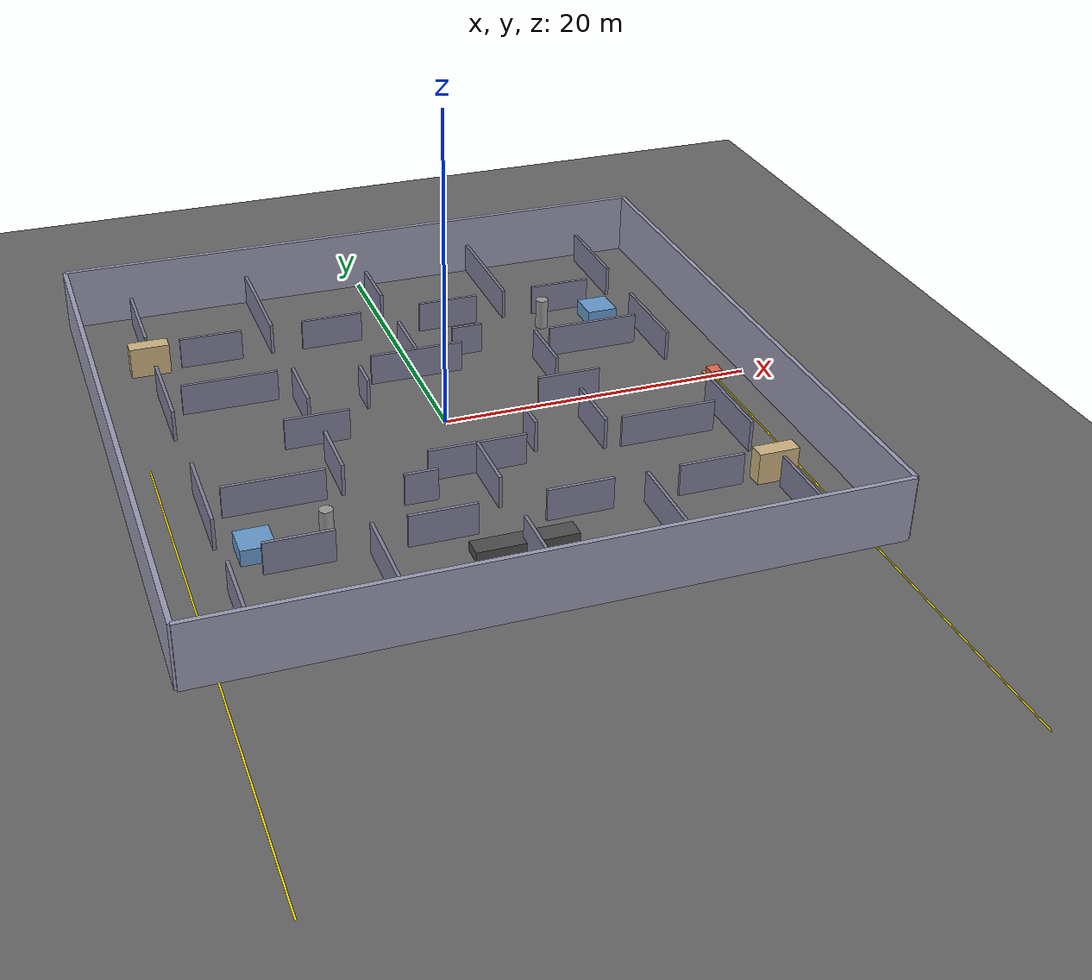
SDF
<?xml version="1.0" ?>
<sdf version="1.9">
  <world name="factory_world">

    <!-- Physics and Systems -->
    <plugin filename="gz-sim-physics-system" name="gz::sim::systems::Physics">
      <real_time_factor>1.0</real_time_factor>
      <real_time_update_rate>1000</real_time_update_rate>
    </plugin>
    <plugin filename="gz-sim-user-commands-system" name="gz::sim::systems::UserCommands"/>
    <plugin filename="gz-sim-scene-broadcaster-system" name="gz::sim::systems::SceneBroadcaster"/>
    <plugin filename="gz-sim-sensors-system" name="gz::sim::systems::Sensors"/>
    <plugin filename="gz-sim-contact-system" name="gz::sim::systems::Contact"/>

    <!-- Lighting -->
    <light type="directional" name="sun">
      <cast_shadows>true</cast_shadows>
      <pose>0 0 10 0 0 0</pose>
      <diffuse>0.9 0.9 0.9 1</diffuse>
      <specular>0.3 0.3 0.3 1</specular>
      <direction>-0.5 0.1 -0.9</direction>
    </light>

    <light type="point" name="ceiling_light_1">
      <pose>-5 5 5 0 0 0</pose>
      <diffuse>1 1 1 1</diffuse>
      <specular>0.5 0.5 0.5 1</specular>
      <attenuation>
        <range>15</range>
        <linear>0.1</linear>
        <constant>0.5</constant>
        <quadratic>0.01</quadratic>
      </attenuation>
    </light>

    <light type="point" name="ceiling_light_2">
      <pose>5 -5 5 0 0 0</pose>
      <diffuse>1 1 1 1</diffuse>
      <specular>0.5 0.5 0.5 1</specular>
      <attenuation>
        <range>15</range>
        <linear>0.1</linear>
        <constant>0.5</constant>
        <quadratic>0.01</quadratic>
      </attenuation>
    </light>

    <light type="point" name="ceiling_light_3">
      <pose>-5 -5 5 0 0 0</pose>
      <diffuse>1 1 1 1</diffuse>
      <specular>0.5 0.5 0.5 1</specular>
      <attenuation>
        <range>15</range>
        <linear>0.1</linear>
        <constant>0.5</constant>
        <quadratic>0.01</quadratic>
      </attenuation>
    </light>

    <light type="point" name="ceiling_light_4">
      <pose>5 5 5 0 0 0</pose>
      <diffuse>1 1 1 1</diffuse>
      <specular>0.5 0.5 0.5 1</specular>
      <attenuation>
        <range>15</range>
        <linear>0.1</linear>
        <constant>0.5</constant>
        <quadratic>0.01</quadratic>
      </attenuation>
    </light>

    <!-- Ground Plane -->
    <model name="ground_plane">
      <static>true</static>
      <link name="link">
        <collision name="collision">
          <geometry>
            <plane>
              <normal>0 0 1</normal>
              <size>50 50</size>
            </plane>
          </geometry>
        </collision>
        <visual name="visual">
          <geometry>
            <plane>
              <normal>0 0 1</normal>
              <size>50 50</size>
            </plane>
          </geometry>
          <material>
            <ambient>0.3 0.3 0.3 1</ambient>
            <diffuse>0.4 0.4 0.4 1</diffuse>
            <specular>0.1 0.1 0.1 1</specular>
          </material>
        </visual>
      </link>
    </model>

    <!-- Outer Factory Walls -->
    <model name="wall_north">
      <pose>0 -20 2 0 0 0</pose>
      <static>true</static>
      <link name="link">
        <collision name="collision"><geometry><box><size>40 0.3 4</size></box></geometry></collision>
        <visual name="visual"><geometry><box><size>40 0.3 4</size></box></geometry>
          <material><ambient>0.5 0.5 0.6 1</ambient><diffuse>0.6 0.6 0.7 1</diffuse></material>
        </visual>
      </link>
    </model>

    <model name="wall_south">
      <pose>0 20 2 0 0 0</pose>
      <static>true</static>
      <link name="link">
        <collision name="collision"><geometry><box><size>40 0.3 4</size></box></geometry></collision>
        <visual name="visual"><geometry><box><size>40 0.3 4</size></box></geometry>
          <material><ambient>0.5 0.5 0.6 1</ambient><diffuse>0.6 0.6 0.7 1</diffuse></material>
        </visual>
      </link>
    </model>

    <model name="wall_west">
      <pose>-20 0 2 0 0 0</pose>
      <static>true</static>
      <link name="link">
        <collision name="collision"><geometry><box><size>0.3 40 4</size></box></geometry></collision>
        <visual name="visual"><geometry><box><size>0.3 40 4</size></box></geometry>
          <material><ambient>0.5 0.5 0.6 1</ambient><diffuse>0.6 0.6 0.7 1</diffuse></material>
        </visual>
      </link>
    </model>

    <model name="wall_east">
      <pose>20 0 2 0 0 0</pose>
      <static>true</static>
      <link name="link">
        <collision name="collision"><geometry><box><size>0.3 40 4</size></box></geometry></collision>
        <visual name="visual"><geometry><box><size>0.3 40 4</size></box></geometry>
          <material><ambient>0.5 0.5 0.6 1</ambient><diffuse>0.6 0.6 0.7 1</diffuse></material>
        </visual>
      </link>
    </model>

    <!-- LABYRINTH WALLS - Connected Maze Structure -->

    <!-- Horizontal Walls (Row 1 - Top) -->
    <model name="maze_wall_h1_1">
      <pose>-12 -12 1 0 0 0</pose>
      <static>true</static>
      <link name="link">
        <collision name="collision"><geometry><box><size>4 0.2 2</size></box></geometry></collision>
        <visual name="visual"><geometry><box><size>4 0.2 2</size></box></geometry>
          <material><ambient>0.4 0.4 0.5 1</ambient><diffuse>0.5 0.5 0.6 1</diffuse></material>
        </visual>
      </link>
    </model>

    <model name="maze_wall_h1_2">
      <pose>-4 -12 1 0 0 0</pose>
      <static>true</static>
      <link name="link">
        <collision name="collision"><geometry><box><size>4 0.2 2</size></box></geometry></collision>
        <visual name="visual"><geometry><box><size>4 0.2 2</size></box></geometry>
          <material><ambient>0.4 0.4 0.5 1</ambient><diffuse>0.5 0.5 0.6 1</diffuse></material>
        </visual>
      </link>
    </model>

    <model name="maze_wall_h1_3">
      <pose>4 -12 1 0 0 0</pose>
      <static>true</static>
      <link name="link">
        <collision name="collision"><geometry><box><size>4 0.2 2</size></box></geometry></collision>
        <visual name="visual"><geometry><box><size>4 0.2 2</size></box></geometry>
          <material><ambient>0.4 0.4 0.5 1</ambient><diffuse>0.5 0.5 0.6 1</diffuse></material>
        </visual>
      </link>
    </model>

    <model name="maze_wall_h1_4">
      <pose>12 -12 1 0 0 0</pose>
      <static>true</static>
      <link name="link">
        <collision name="collision"><geometry><box><size>4 0.2 2</size></box></geometry></collision>
        <visual name="visual"><geometry><box><size>4 0.2 2</size></box></geometry>
          <material><ambient>0.4 0.4 0.5 1</ambient><diffuse>0.5 0.5 0.6 1</diffuse></material>
        </visual>
      </link>
    </model>

    <!-- Horizontal Walls (Row 2) -->
    <model name="maze_wall_h2_1">
      <pose>-12 -6 1 0 0 0</pose>
      <static>true</static>
      <link name="link">
        <collision name="collision"><geometry><box><size>6 0.2 2</size></box></geometry></collision>
        <visual name="visual"><geometry><box><size>6 0.2 2</size></box></geometry>
          <material><ambient>0.4 0.4 0.5 1</ambient><diffuse>0.5 0.5 0.6 1</diffuse></material>
        </visual>
      </link>
    </model>

    <model name="maze_wall_h2_2">
      <pose>0 -6 1 0 0 0</pose>
      <static>true</static>
      <link name="link">
        <collision name="collision"><geometry><box><size>6 0.2 2</size></box></geometry></collision>
        <visual name="visual"><geometry><box><size>6 0.2 2</size></box></geometry>
          <material><ambient>0.4 0.4 0.5 1</ambient><diffuse>0.5 0.5 0.6 1</diffuse></material>
        </visual>
      </link>
    </model>

    <model name="maze_wall_h2_3">
      <pose>12 -6 1 0 0 0</pose>
      <static>true</static>
      <link name="link">
        <collision name="collision"><geometry><box><size>6 0.2 2</size></box></geometry></collision>
        <visual name="visual"><geometry><box><size>6 0.2 2</size></box></geometry>
          <material><ambient>0.4 0.4 0.5 1</ambient><diffuse>0.5 0.5 0.6 1</diffuse></material>
        </visual>
      </link>
    </model>

    <!-- Horizontal Walls (Row 3 - Center) -->
    <model name="maze_wall_h3_1">
      <pose>-8 0 1 0 0 0</pose>
      <static>true</static>
      <link name="link">
        <collision name="collision"><geometry><box><size>4 0.2 2</size></box></geometry></collision>
        <visual name="visual"><geometry><box><size>4 0.2 2</size></box></geometry>
          <material><ambient>0.4 0.4 0.5 1</ambient><diffuse>0.5 0.5 0.6 1</diffuse></material>
        </visual>
      </link>
    </model>

    <model name="maze_wall_h3_2">
      <pose>8 0 1 0 0 0</pose>
      <static>true</static>
      <link name="link">
        <collision name="collision"><geometry><box><size>4 0.2 2</size></box></geometry></collision>
        <visual name="visual"><geometry><box><size>4 0.2 2</size></box></geometry>
          <material><ambient>0.4 0.4 0.5 1</ambient><diffuse>0.5 0.5 0.6 1</diffuse></material>
        </visual>
      </link>
    </model>

    <!-- Horizontal Walls (Row 4) -->
    <model name="maze_wall_h4_1">
      <pose>-12 6 1 0 0 0</pose>
      <static>true</static>
      <link name="link">
        <collision name="collision"><geometry><box><size>6 0.2 2</size></box></geometry></collision>
        <visual name="visual"><geometry><box><size>6 0.2 2</size></box></geometry>
          <material><ambient>0.4 0.4 0.5 1</ambient><diffuse>0.5 0.5 0.6 1</diffuse></material>
        </visual>
      </link>
    </model>

    <model name="maze_wall_h4_2">
      <pose>0 6 1 0 0 0</pose>
      <static>true</static>
      <link name="link">
        <collision name="collision"><geometry><box><size>6 0.2 2</size></box></geometry></collision>
        <visual name="visual"><geometry><box><size>6 0.2 2</size></box></geometry>
          <material><ambient>0.4 0.4 0.5 1</ambient><diffuse>0.5 0.5 0.6 1</diffuse></material>
        </visual>
      </link>
    </model>

    <model name="maze_wall_h4_3">
      <pose>12 6 1 0 0 0</pose>
      <static>true</static>
      <link name="link">
        <collision name="collision"><geometry><box><size>6 0.2 2</size></box></geometry></collision>
        <visual name="visual"><geometry><box><size>6 0.2 2</size></box></geometry>
          <material><ambient>0.4 0.4 0.5 1</ambient><diffuse>0.5 0.5 0.6 1</diffuse></material>
        </visual>
      </link>
    </model>

    <!-- Horizontal Walls (Row 5 - Bottom) -->
    <model name="maze_wall_h5_1">
      <pose>-12 12 1 0 0 0</pose>
      <static>true</static>
      <link name="link">
        <collision name="collision"><geometry><box><size>4 0.2 2</size></box></geometry></collision>
        <visual name="visual"><geometry><box><size>4 0.2 2</size></box></geometry>
          <material><ambient>0.4 0.4 0.5 1</ambient><diffuse>0.5 0.5 0.6 1</diffuse></material>
        </visual>
      </link>
    </model>

    <model name="maze_wall_h5_2">
      <pose>-4 12 1 0 0 0</pose>
      <static>true</static>
      <link name="link">
        <collision name="collision"><geometry><box><size>4 0.2 2</size></box></geometry></collision>
        <visual name="visual"><geometry><box><size>4 0.2 2</size></box></geometry>
          <material><ambient>0.4 0.4 0.5 1</ambient><diffuse>0.5 0.5 0.6 1</diffuse></material>
        </visual>
      </link>
    </model>

    <model name="maze_wall_h5_3">
      <pose>4 12 1 0 0 0</pose>
      <static>true</static>
      <link name="link">
        <collision name="collision"><geometry><box><size>4 0.2 2</size></box></geometry></collision>
        <visual name="visual"><geometry><box><size>4 0.2 2</size></box></geometry>
          <material><ambient>0.4 0.4 0.5 1</ambient><diffuse>0.5 0.5 0.6 1</diffuse></material>
        </visual>
      </link>
    </model>

    <model name="maze_wall_h5_4">
      <pose>12 12 1 0 0 0</pose>
      <static>true</static>
      <link name="link">
        <collision name="collision"><geometry><box><size>4 0.2 2</size></box></geometry></collision>
        <visual name="visual"><geometry><box><size>4 0.2 2</size></box></geometry>
          <material><ambient>0.4 0.4 0.5 1</ambient><diffuse>0.5 0.5 0.6 1</diffuse></material>
        </visual>
      </link>
    </model>

    <!-- Vertical Walls (Column 1 - Left) -->
    <model name="maze_wall_v1_1">
      <pose>-16 -16 1 0 0 0</pose>
      <static>true</static>
      <link name="link">
        <collision name="collision"><geometry><box><size>0.2 6 2</size></box></geometry></collision>
        <visual name="visual"><geometry><box><size>0.2 6 2</size></box></geometry>
          <material><ambient>0.4 0.4 0.5 1</ambient><diffuse>0.5 0.5 0.6 1</diffuse></material>
        </visual>
      </link>
    </model>

    <model name="maze_wall_v1_2">
      <pose>-16 -6 1 0 0 0</pose>
      <static>true</static>
      <link name="link">
        <collision name="collision"><geometry><box><size>0.2 6 2</size></box></geometry></collision>
        <visual name="visual"><geometry><box><size>0.2 6 2</size></box></geometry>
          <material><ambient>0.4 0.4 0.5 1</ambient><diffuse>0.5 0.5 0.6 1</diffuse></material>
        </visual>
      </link>
    </model>

    <model name="maze_wall_v1_3">
      <pose>-16 6 1 0 0 0</pose>
      <static>true</static>
      <link name="link">
        <collision name="collision"><geometry><box><size>0.2 6 2</size></box></geometry></collision>
        <visual name="visual"><geometry><box><size>0.2 6 2</size></box></geometry>
          <material><ambient>0.4 0.4 0.5 1</ambient><diffuse>0.5 0.5 0.6 1</diffuse></material>
        </visual>
      </link>
    </model>

    <model name="maze_wall_v1_4">
      <pose>-16 16 1 0 0 0</pose>
      <static>true</static>
      <link name="link">
        <collision name="collision"><geometry><box><size>0.2 6 2</size></box></geometry></collision>
        <visual name="visual"><geometry><box><size>0.2 6 2</size></box></geometry>
          <material><ambient>0.4 0.4 0.5 1</ambient><diffuse>0.5 0.5 0.6 1</diffuse></material>
        </visual>
      </link>
    </model>

    <!-- Vertical Walls (Column 2) -->
    <model name="maze_wall_v2_1">
      <pose>-8 -16 1 0 0 0</pose>
      <static>true</static>
      <link name="link">
        <collision name="collision"><geometry><box><size>0.2 8 2</size></box></geometry></collision>
        <visual name="visual"><geometry><box><size>0.2 8 2</size></box></geometry>
          <material><ambient>0.4 0.4 0.5 1</ambient><diffuse>0.5 0.5 0.6 1</diffuse></material>
        </visual>
      </link>
    </model>

    <model name="maze_wall_v2_2">
      <pose>-8 -4 1 0 0 0</pose>
      <static>true</static>
      <link name="link">
        <collision name="collision"><geometry><box><size>0.2 4 2</size></box></geometry></collision>
        <visual name="visual"><geometry><box><size>0.2 4 2</size></box></geometry>
          <material><ambient>0.4 0.4 0.5 1</ambient><diffuse>0.5 0.5 0.6 1</diffuse></material>
        </visual>
      </link>
    </model>

    <model name="maze_wall_v2_3">
      <pose>-8 4 1 0 0 0</pose>
      <static>true</static>
      <link name="link">
        <collision name="collision"><geometry><box><size>0.2 4 2</size></box></geometry></collision>
        <visual name="visual"><geometry><box><size>0.2 4 2</size></box></geometry>
          <material><ambient>0.4 0.4 0.5 1</ambient><diffuse>0.5 0.5 0.6 1</diffuse></material>
        </visual>
      </link>
    </model>

    <model name="maze_wall_v2_4">
      <pose>-8 16 1 0 0 0</pose>
      <static>true</static>
      <link name="link">
        <collision name="collision"><geometry><box><size>0.2 8 2</size></box></geometry></collision>
        <visual name="visual"><geometry><box><size>0.2 8 2</size></box></geometry>
          <material><ambient>0.4 0.4 0.5 1</ambient><diffuse>0.5 0.5 0.6 1</diffuse></material>
        </visual>
      </link>
    </model>

    <!-- Vertical Walls (Column 3 - Center) -->
    <model name="maze_wall_v3_1">
      <pose>0 -16 1 0 0 0</pose>
      <static>true</static>
      <link name="link">
        <collision name="collision"><geometry><box><size>0.2 4 2</size></box></geometry></collision>
        <visual name="visual"><geometry><box><size>0.2 4 2</size></box></geometry>
          <material><ambient>0.4 0.4 0.5 1</ambient><diffuse>0.5 0.5 0.6 1</diffuse></material>
        </visual>
      </link>
    </model>

    <model name="maze_wall_v3_2">
      <pose>0 -8 1 0 0 0</pose>
      <static>true</static>
      <link name="link">
        <collision name="collision"><geometry><box><size>0.2 4 2</size></box></geometry></collision>
        <visual name="visual"><geometry><box><size>0.2 4 2</size></box></geometry>
          <material><ambient>0.4 0.4 0.5 1</ambient><diffuse>0.5 0.5 0.6 1</diffuse></material>
        </visual>
      </link>
    </model>

    <model name="maze_wall_v3_3">
      <pose>0 8 1 0 0 0</pose>
      <static>true</static>
      <link name="link">
        <collision name="collision"><geometry><box><size>0.2 4 2</size></box></geometry></collision>
        <visual name="visual"><geometry><box><size>0.2 4 2</size></box></geometry>
          <material><ambient>0.4 0.4 0.5 1</ambient><diffuse>0.5 0.5 0.6 1</diffuse></material>
        </visual>
      </link>
    </model>

    <model name="maze_wall_v3_4">
      <pose>0 16 1 0 0 0</pose>
      <static>true</static>
      <link name="link">
        <collision name="collision"><geometry><box><size>0.2 4 2</size></box></geometry></collision>
        <visual name="visual"><geometry><box><size>0.2 4 2</size></box></geometry>
          <material><ambient>0.4 0.4 0.5 1</ambient><diffuse>0.5 0.5 0.6 1</diffuse></material>
        </visual>
      </link>
    </model>

    <!-- Vertical Walls (Column 4) -->
    <model name="maze_wall_v4_1">
      <pose>8 -16 1 0 0 0</pose>
      <static>true</static>
      <link name="link">
        <collision name="collision"><geometry><box><size>0.2 8 2</size></box></geometry></collision>
        <visual name="visual"><geometry><box><size>0.2 8 2</size></box></geometry>
          <material><ambient>0.4 0.4 0.5 1</ambient><diffuse>0.5 0.5 0.6 1</diffuse></material>
        </visual>
      </link>
    </model>

    <model name="maze_wall_v4_2">
      <pose>8 -4 1 0 0 0</pose>
      <static>true</static>
      <link name="link">
        <collision name="collision"><geometry><box><size>0.2 4 2</size></box></geometry></collision>
        <visual name="visual"><geometry><box><size>0.2 4 2</size></box></geometry>
          <material><ambient>0.4 0.4 0.5 1</ambient><diffuse>0.5 0.5 0.6 1</diffuse></material>
        </visual>
      </link>
    </model>

    <model name="maze_wall_v4_3">
      <pose>8 4 1 0 0 0</pose>
      <static>true</static>
      <link name="link">
        <collision name="collision"><geometry><box><size>0.2 4 2</size></box></geometry></collision>
        <visual name="visual"><geometry><box><size>0.2 4 2</size></box></geometry>
          <material><ambient>0.4 0.4 0.5 1</ambient><diffuse>0.5 0.5 0.6 1</diffuse></material>
        </visual>
      </link>
    </model>

    <model name="maze_wall_v4_4">
      <pose>8 16 1 0 0 0</pose>
      <static>true</static>
      <link name="link">
        <collision name="collision"><geometry><box><size>0.2 8 2</size></box></geometry></collision>
        <visual name="visual"><geometry><box><size>0.2 8 2</size></box></geometry>
          <material><ambient>0.4 0.4 0.5 1</ambient><diffuse>0.5 0.5 0.6 1</diffuse></material>
        </visual>
      </link>
    </model>

    <!-- Vertical Walls (Column 5 - Right) -->
    <model name="maze_wall_v5_1">
      <pose>16 -16 1 0 0 0</pose>
      <static>true</static>
      <link name="link">
        <collision name="collision"><geometry><box><size>0.2 6 2</size></box></geometry></collision>
        <visual name="visual"><geometry><box><size>0.2 6 2</size></box></geometry>
          <material><ambient>0.4 0.4 0.5 1</ambient><diffuse>0.5 0.5 0.6 1</diffuse></material>
        </visual>
      </link>
    </model>

    <model name="maze_wall_v5_2">
      <pose>16 -6 1 0 0 0</pose>
      <static>true</static>
      <link name="link">
        <collision name="collision"><geometry><box><size>0.2 6 2</size></box></geometry></collision>
        <visual name="visual"><geometry><box><size>0.2 6 2</size></box></geometry>
          <material><ambient>0.4 0.4 0.5 1</ambient><diffuse>0.5 0.5 0.6 1</diffuse></material>
        </visual>
      </link>
    </model>

    <model name="maze_wall_v5_3">
      <pose>16 6 1 0 0 0</pose>
      <static>true</static>
      <link name="link">
        <collision name="collision"><geometry><box><size>0.2 6 2</size></box></geometry></collision>
        <visual name="visual"><geometry><box><size>0.2 6 2</size></box></geometry>
          <material><ambient>0.4 0.4 0.5 1</ambient><diffuse>0.5 0.5 0.6 1</diffuse></material>
        </visual>
      </link>
    </model>

    <model name="maze_wall_v5_4">
      <pose>16 16 1 0 0 0</pose>
      <static>true</static>
      <link name="link">
        <collision name="collision"><geometry><box><size>0.2 6 2</size></box></geometry></collision>
        <visual name="visual"><geometry><box><size>0.2 6 2</size></box></geometry>
          <material><ambient>0.4 0.4 0.5 1</ambient><diffuse>0.5 0.5 0.6 1</diffuse></material>
        </visual>
      </link>
    </model>

    <!-- Additional Short Walls for Dead Ends -->
    <model name="maze_wall_dead1">
      <pose>-4 -8 1 0 0 0</pose>
      <static>true</static>
      <link name="link">
        <collision name="collision"><geometry><box><size>2 0.2 2</size></box></geometry></collision>
        <visual name="visual"><geometry><box><size>2 0.2 2</size></box></geometry>
          <material><ambient>0.4 0.4 0.5 1</ambient><diffuse>0.5 0.5 0.6 1</diffuse></material>
        </visual>
      </link>
    </model>

    <model name="maze_wall_dead2">
      <pose>4 8 1 0 0 0</pose>
      <static>true</static>
      <link name="link">
        <collision name="collision"><geometry><box><size>2 0.2 2</size></box></geometry></collision>
        <visual name="visual"><geometry><box><size>2 0.2 2</size></box></geometry>
          <material><ambient>0.4 0.4 0.5 1</ambient><diffuse>0.5 0.5 0.6 1</diffuse></material>
        </visual>
      </link>
    </model>

    <model name="maze_wall_dead3">
      <pose>4 -4 1 0 0 0</pose>
      <static>true</static>
      <link name="link">
        <collision name="collision"><geometry><box><size>0.2 2 2</size></box></geometry></collision>
        <visual name="visual"><geometry><box><size>0.2 2 2</size></box></geometry>
          <material><ambient>0.4 0.4 0.5 1</ambient><diffuse>0.5 0.5 0.6 1</diffuse></material>
        </visual>
      </link>
    </model>

    <model name="maze_wall_dead4">
      <pose>-4 4 1 0 0 0</pose>
      <static>true</static>
      <link name="link">
        <collision name="collision"><geometry><box><size>0.2 2 2</size></box></geometry></collision>
        <visual name="visual"><geometry><box><size>0.2 2 2</size></box></geometry>
          <material><ambient>0.4 0.4 0.5 1</ambient><diffuse>0.5 0.5 0.6 1</diffuse></material>
        </visual>
      </link>
    </model>

    <!-- Machinery and Equipment -->
    <model name="machine_1">
      <pose>-14 -10 0.5 0 0 0</pose>
      <static>true</static>
      <link name="base">
        <collision name="collision"><geometry><box><size>2 2 1</size></box></geometry></collision>
        <visual name="visual"><geometry><box><size>2 2 1</size></box></geometry>
          <material><ambient>0.3 0.5 0.7 1</ambient><diffuse>0.4 0.6 0.8 1</diffuse></material>
        </visual>
      </link>
    </model>

    <model name="machine_2">
      <pose>14 10 0.5 0 0 0</pose>
      <static>true</static>
      <link name="base">
        <collision name="collision"><geometry><box><size>2 2 1</size></box></geometry></collision>
        <visual name="visual"><geometry><box><size>2 2 1</size></box></geometry>
          <material><ambient>0.3 0.5 0.7 1</ambient><diffuse>0.4 0.6 0.8 1</diffuse></material>
        </visual>
      </link>
    </model>

    <!-- Conveyor Belt -->
    <model name="conveyor_belt">
      <pose>0 -14 0.3 0 0 0</pose>
      <static>true</static>
      <link name="belt">
        <collision name="collision"><geometry><box><size>6 1.2 0.6</size></box></geometry></collision>
        <visual name="visual"><geometry><box><size>6 1.2 0.6</size></box></geometry>
          <material><ambient>0.2 0.2 0.2 1</ambient><diffuse>0.3 0.3 0.3 1</diffuse></material>
        </visual>
      </link>
    </model>

    <!-- Storage Racks -->
    <model name="storage_rack_1">
      <pose>-16 12 1 0 0 0</pose>
      <static>true</static>
      <link name="rack">
        <collision name="collision"><geometry><box><size>2.5 1 2</size></box></geometry></collision>
        <visual name="visual"><geometry><box><size>2.5 1 2</size></box></geometry>
          <material><ambient>0.7 0.6 0.4 1</ambient><diffuse>0.8 0.7 0.5 1</diffuse></material>
        </visual>
      </link>
    </model>

    <model name="storage_rack_2">
      <pose>16 -12 1 0 0 0</pose>
      <static>true</static>
      <link name="rack">
        <collision name="collision"><geometry><box><size>2.5 1 2</size></box></geometry></collision>
        <visual name="visual"><geometry><box><size>2.5 1 2</size></box></geometry>
          <material><ambient>0.7 0.6 0.4 1</ambient><diffuse>0.8 0.7 0.5 1</diffuse></material>
        </visual>
      </link>
    </model>

    <!-- Pillars -->
    <model name="pillar_1">
      <pose>-10 -10 1 0 0 0</pose>
      <static>true</static>
      <link name="link">
        <collision name="collision"><geometry><cylinder><radius>0.4</radius><length>2</length></cylinder></geometry></collision>
        <visual name="visual"><geometry><cylinder><radius>0.4</radius><length>2</length></cylinder></geometry>
          <material><ambient>0.5 0.5 0.5 1</ambient><diffuse>0.6 0.6 0.6 1</diffuse></material>
        </visual>
      </link>
    </model>

    <model name="pillar_2">
      <pose>10 10 1 0 0 0</pose>
      <static>true</static>
      <link name="link">
        <collision name="collision"><geometry><cylinder><radius>0.4</radius><length>2</length></cylinder></geometry></collision>
        <visual name="visual"><geometry><cylinder><radius>0.4</radius><length>2</length></cylinder></geometry>
          <material><ambient>0.5 0.5 0.5 1</ambient><diffuse>0.6 0.6 0.6 1</diffuse></material>
        </visual>
      </link>
    </model>

    <!-- Pallet with Boxes -->
    <model name="pallet">
      <pose>18 0 0.1 0 0 0</pose>
      <static>true</static>
      <link name="pallet_base">
        <collision name="collision"><geometry><box><size>1.2 1.2 0.1</size></box></geometry></collision>
        <visual name="visual"><geometry><box><size>1.2 1.2 0.1</size></box></geometry>
          <material><ambient>0.6 0.4 0.2 1</ambient><diffuse>0.7 0.5 0.3 1</diffuse></material>
        </visual>
      </link>
    </model>

    <model name="box_1">
      <pose>18 0 0.3 0 0 0</pose>
      <static>true</static>
      <link name="box">
        <collision name="collision"><geometry><box><size>0.8 0.8 0.5</size></box></geometry></collision>
        <visual name="visual"><geometry><box><size>0.8 0.8 0.5</size></box></geometry>
          <material><ambient>0.8 0.3 0.2 1</ambient><diffuse>0.9 0.4 0.3 1</diffuse></material>
        </visual>
      </link>
    </model>

    <!-- Safety Markings -->
    <model name="safety_line_yellow_1">
      <pose>-18 -18 0.03 0 0 0</pose>
      <static>true</static>
      <link name="line">
        <collision name="collision"><geometry><box><size>0.1 36 0.01</size></box></geometry></collision>
        <visual name="visual"><geometry><box><size>0.1 36 0.01</size></box></geometry>
          <material><ambient>1 0.8 0 1</ambient><diffuse>1 0.9 0 1</diffuse></material>
        </visual>
      </link>
    </model>

    <model name="safety_line_yellow_2">
      <pose>18 -18 0.03 0 0 0</pose>
      <static>true</static>
      <link name="line">
        <collision name="collision"><geometry><box><size>0.1 36 0.01</size></box></geometry></collision>
        <visual name="visual"><geometry><box><size>0.1 36 0.01</size></box></geometry>
          <material><ambient>1 0.8 0 1</ambient><diffuse>1 0.9 0 1</diffuse></material>
        </visual>
      </link>
    </model>

  </world>
</sdf>
